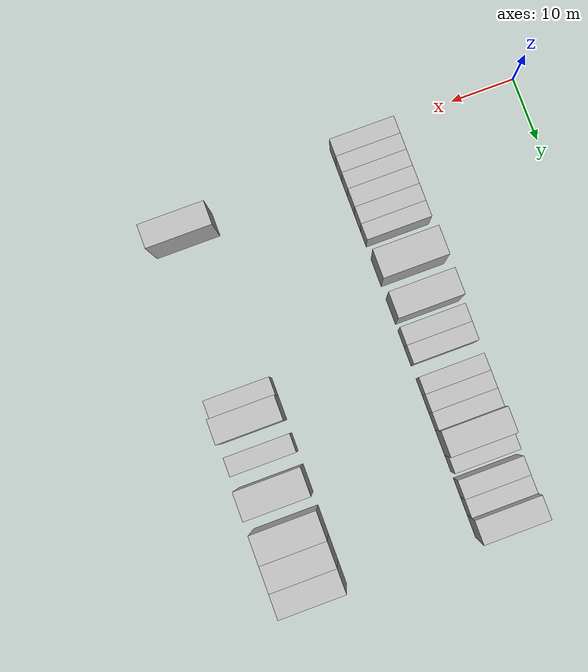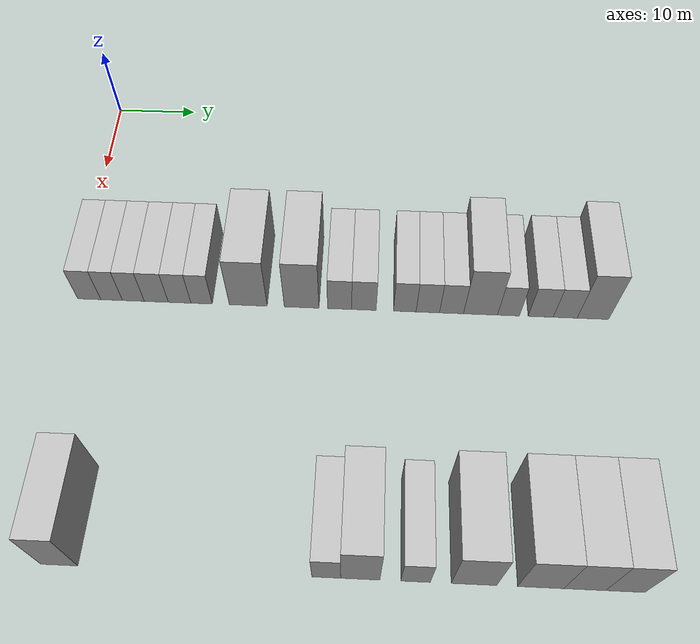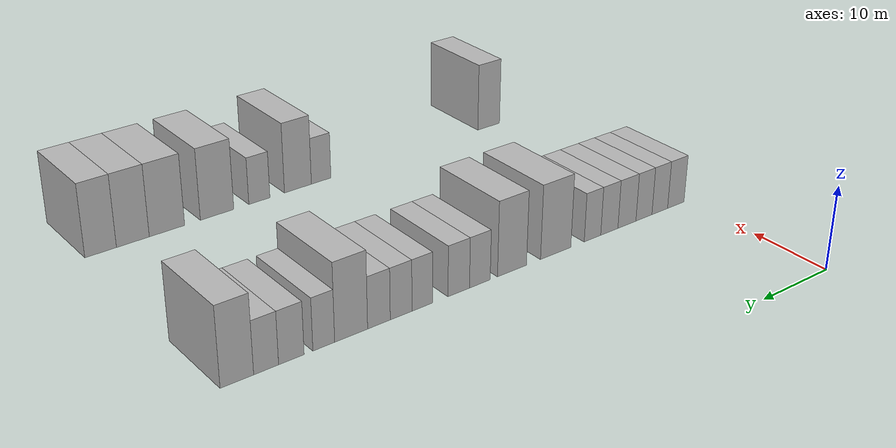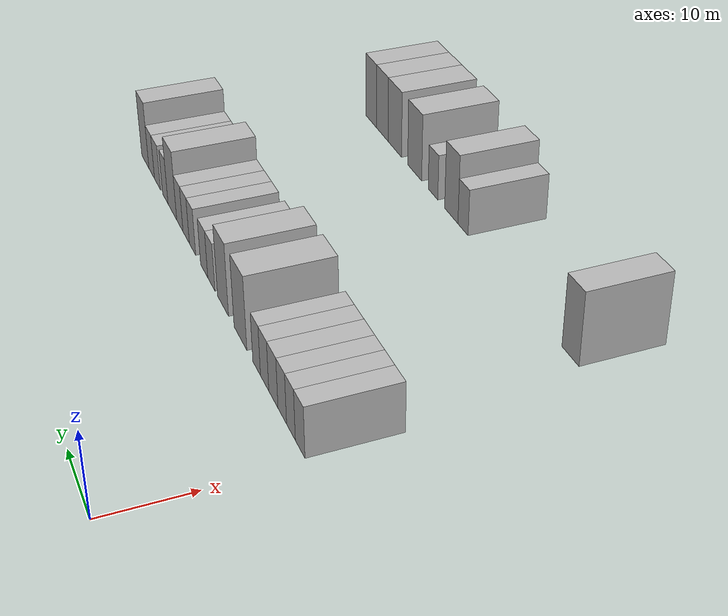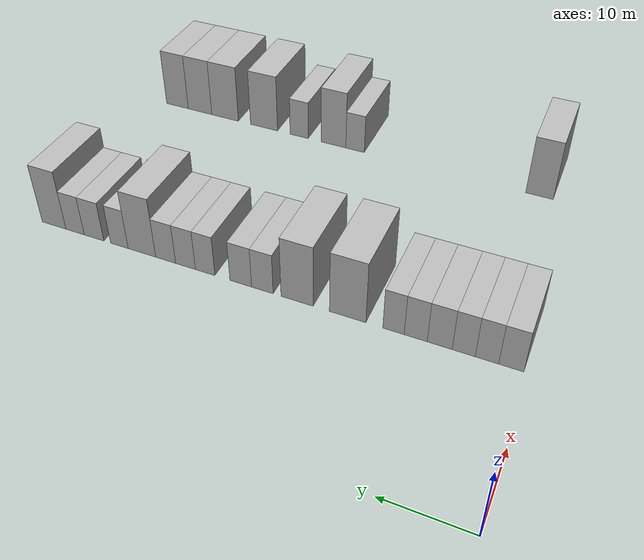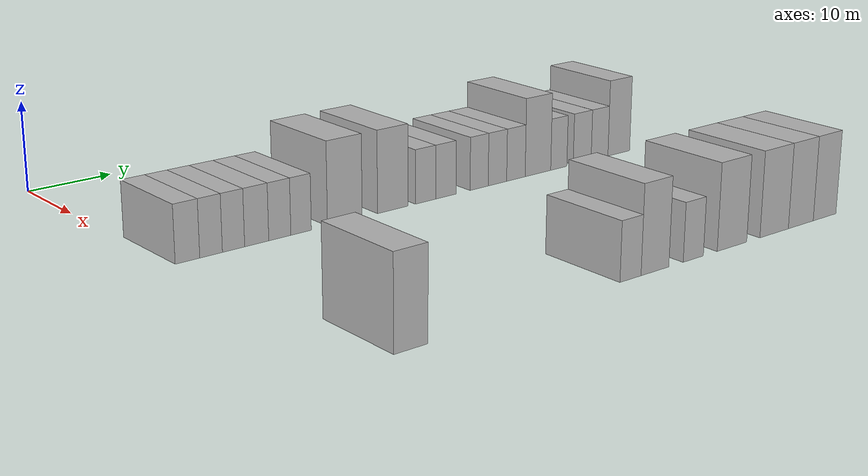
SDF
<sdf version="1.6">
 <world name="default">
  <model name="building_48">
   <static>1</static>
   <pose>25.0000 2.0056 0 0.000000 0.000000 0.000000</pose>
   <link name="link">
    <pose>0 0 3.00 0 0 0</pose>
    <collision name="collision"><geometry><box><size>10.0000 2.7137 6.0000</size></box></geometry></collision>
    <visual name="visual">
     <cast_shadows>0</cast_shadows>
     <geometry><box><size>10.0000 2.7137 6.0000</size></box></geometry>
     <material>
      <script>
       <uri>model://HANNAS_wall/materials/scripts</uri>
       <uri>model://HANNAS_wall/materials/textures</uri>
       <name>vrc/HANNAS_wall</name>
      </script>
     </material>
    </visual>
   </link>
  </model>
  <model name="building_49">
   <static>1</static>
   <pose>25.0000 4.6381 0 0.000000 0.000000 0.000000</pose>
   <link name="link">
    <pose>0 0 3.00 0 0 0</pose>
    <collision name="collision"><geometry><box><size>10.0000 2.5514 6.0000</size></box></geometry></collision>
    <visual name="visual">
     <cast_shadows>0</cast_shadows>
     <geometry><box><size>10.0000 2.5514 6.0000</size></box></geometry>
     <material>
      <script>
       <uri>model://HANNAS_wall/materials/scripts</uri>
       <uri>model://HANNAS_wall/materials/textures</uri>
       <name>vrc/HANNAS_wall</name>
      </script>
     </material>
    </visual>
   </link>
  </model>
  <model name="building_50">
   <static>1</static>
   <pose>25.0000 7.1918 0 0.000000 0.000000 0.000000</pose>
   <link name="link">
    <pose>0 0 3.00 0 0 0</pose>
    <collision name="collision"><geometry><box><size>10.0000 2.5560 6.0000</size></box></geometry></collision>
    <visual name="visual">
     <cast_shadows>0</cast_shadows>
     <geometry><box><size>10.0000 2.5560 6.0000</size></box></geometry>
     <material>
      <script>
       <uri>model://HANNAS_wall/materials/scripts</uri>
       <uri>model://HANNAS_wall/materials/textures</uri>
       <name>vrc/HANNAS_wall</name>
      </script>
     </material>
    </visual>
   </link>
  </model>
  <model name="building_51">
   <static>1</static>
   <pose>25.0000 9.8835 0 0.000000 0.000000 0.000000</pose>
   <link name="link">
    <pose>0 0 3.00 0 0 0</pose>
    <collision name="collision"><geometry><box><size>10.0000 2.8274 6.0000</size></box></geometry></collision>
    <visual name="visual">
     <cast_shadows>0</cast_shadows>
     <geometry><box><size>10.0000 2.8274 6.0000</size></box></geometry>
     <material>
      <script>
       <uri>model://HANNAS_wall/materials/scripts</uri>
       <uri>model://HANNAS_wall/materials/textures</uri>
       <name>vrc/HANNAS_wall</name>
      </script>
     </material>
    </visual>
   </link>
  </model>
  <model name="building_52">
   <static>1</static>
   <pose>25.0000 12.6209 0 0.000000 0.000000 0.000000</pose>
   <link name="link">
    <pose>0 0 3.00 0 0 0</pose>
    <collision name="collision"><geometry><box><size>10.0000 2.6474 6.0000</size></box></geometry></collision>
    <visual name="visual">
     <cast_shadows>0</cast_shadows>
     <geometry><box><size>10.0000 2.6474 6.0000</size></box></geometry>
     <material>
      <script>
       <uri>model://HANNAS_wall/materials/scripts</uri>
       <uri>model://HANNAS_wall/materials/textures</uri>
       <name>vrc/HANNAS_wall</name>
      </script>
     </material>
    </visual>
   </link>
  </model>
  <model name="building_53">
   <static>1</static>
   <pose>25.0000 15.1925 0 0.000000 0.000000 0.000000</pose>
   <link name="link">
    <pose>0 0 3.00 0 0 0</pose>
    <collision name="collision"><geometry><box><size>10.0000 2.4960 6.0000</size></box></geometry></collision>
    <visual name="visual">
     <cast_shadows>0</cast_shadows>
     <geometry><box><size>10.0000 2.4960 6.0000</size></box></geometry>
     <material>
      <script>
       <uri>model://HANNAS_wall/materials/scripts</uri>
       <uri>model://HANNAS_wall/materials/textures</uri>
       <name>vrc/HANNAS_wall</name>
      </script>
     </material>
    </visual>
   </link>
  </model>
  <model name="building_54">
   <static>1</static>
   <pose>25.0000 20.6453 0 0.000000 0.000000 0.000000</pose>
   <link name="link">
    <pose>0 0 4.50 0 0 0</pose>
    <collision name="collision"><geometry><box><size>10.0000 4.4096 9.0000</size></box></geometry></collision>
    <visual name="visual">
     <cast_shadows>0</cast_shadows>
     <geometry><box><size>10.0000 4.4096 9.0000</size></box></geometry>
     <material>
      <script>
       <uri>model://HANNAS_wall/materials/scripts</uri>
       <uri>model://HANNAS_wall/materials/textures</uri>
       <name>vrc/HANNAS_wall</name>
      </script>
     </material>
    </visual>
   </link>
  </model>
  <model name="building_55">
   <static>1</static>
   <pose>25.0000 26.8684 0 0.000000 0.000000 0.000000</pose>
   <link name="link">
    <pose>0 0 4.50 0 0 0</pose>
    <collision name="collision"><geometry><box><size>10.0000 4.0366 9.0000</size></box></geometry></collision>
    <visual name="visual">
     <cast_shadows>0</cast_shadows>
     <geometry><box><size>10.0000 4.0366 9.0000</size></box></geometry>
     <material>
      <script>
       <uri>model://HANNAS_wall/materials/scripts</uri>
       <uri>model://HANNAS_wall/materials/textures</uri>
       <name>vrc/HANNAS_wall</name>
      </script>
     </material>
    </visual>
   </link>
  </model>
  <model name="building_56">
   <static>1</static>
   <pose>25.0000 31.2788 0 0.000000 0.000000 0.000000</pose>
   <link name="link">
    <pose>0 0 3.00 0 0 0</pose>
    <collision name="collision"><geometry><box><size>10.0000 2.7842 6.0000</size></box></geometry></collision>
    <visual name="visual">
     <cast_shadows>0</cast_shadows>
     <geometry><box><size>10.0000 2.7842 6.0000</size></box></geometry>
     <material>
      <script>
       <uri>model://HANNAS_wall/materials/scripts</uri>
       <uri>model://HANNAS_wall/materials/textures</uri>
       <name>vrc/HANNAS_wall</name>
      </script>
     </material>
    </visual>
   </link>
  </model>
  <model name="building_57">
   <static>1</static>
   <pose>25.0000 34.0920 0 0.000000 0.000000 0.000000</pose>
   <link name="link">
    <pose>0 0 3.00 0 0 0</pose>
    <collision name="collision"><geometry><box><size>10.0000 2.8422 6.0000</size></box></geometry></collision>
    <visual name="visual">
     <cast_shadows>0</cast_shadows>
     <geometry><box><size>10.0000 2.8422 6.0000</size></box></geometry>
     <material>
      <script>
       <uri>model://HANNAS_wall/materials/scripts</uri>
       <uri>model://HANNAS_wall/materials/textures</uri>
       <name>vrc/HANNAS_wall</name>
      </script>
     </material>
    </visual>
   </link>
  </model>
  <model name="building_58">
   <static>1</static>
   <pose>25.0000 38.8232 0 0.000000 0.000000 0.000000</pose>
   <link name="link">
    <pose>0 0 3.00 0 0 0</pose>
    <collision name="collision"><geometry><box><size>10.0000 2.6201 6.0000</size></box></geometry></collision>
    <visual name="visual">
     <cast_shadows>0</cast_shadows>
     <geometry><box><size>10.0000 2.6201 6.0000</size></box></geometry>
     <material>
      <script>
       <uri>model://HANNAS_wall/materials/scripts</uri>
       <uri>model://HANNAS_wall/materials/textures</uri>
       <name>vrc/HANNAS_wall</name>
      </script>
     </material>
    </visual>
   </link>
  </model>
  <model name="building_59">
   <static>1</static>
   <pose>25.0000 41.4877 0 0.000000 0.000000 0.000000</pose>
   <link name="link">
    <pose>0 0 3.00 0 0 0</pose>
    <collision name="collision"><geometry><box><size>10.0000 2.7090 6.0000</size></box></geometry></collision>
    <visual name="visual">
     <cast_shadows>0</cast_shadows>
     <geometry><box><size>10.0000 2.7090 6.0000</size></box></geometry>
     <material>
      <script>
       <uri>model://HANNAS_wall/materials/scripts</uri>
       <uri>model://HANNAS_wall/materials/textures</uri>
       <name>vrc/HANNAS_wall</name>
      </script>
     </material>
    </visual>
   </link>
  </model>
  <model name="building_60">
   <static>1</static>
   <pose>25.0000 44.2271 0 0.000000 0.000000 0.000000</pose>
   <link name="link">
    <pose>0 0 3.00 0 0 0</pose>
    <collision name="collision"><geometry><box><size>10.0000 2.7699 6.0000</size></box></geometry></collision>
    <visual name="visual">
     <cast_shadows>0</cast_shadows>
     <geometry><box><size>10.0000 2.7699 6.0000</size></box></geometry>
     <material>
      <script>
       <uri>model://HANNAS_wall/materials/scripts</uri>
       <uri>model://HANNAS_wall/materials/textures</uri>
       <name>vrc/HANNAS_wall</name>
      </script>
     </material>
    </visual>
   </link>
  </model>
  <model name="building_61">
   <static>1</static>
   <pose>25.0000 47.5703 0 0.000000 0.000000 0.000000</pose>
   <link name="link">
    <pose>0 0 4.50 0 0 0</pose>
    <collision name="collision"><geometry><box><size>10.0000 3.9163 9.0000</size></box></geometry></collision>
    <visual name="visual">
     <cast_shadows>0</cast_shadows>
     <geometry><box><size>10.0000 3.9163 9.0000</size></box></geometry>
     <material>
      <script>
       <uri>model://HANNAS_wall/materials/scripts</uri>
       <uri>model://HANNAS_wall/materials/textures</uri>
       <name>vrc/HANNAS_wall</name>
      </script>
     </material>
    </visual>
   </link>
  </model>
  <model name="building_62">
   <static>1</static>
   <pose>25.0000 50.7920 0 0.000000 0.000000 0.000000</pose>
   <link name="link">
    <pose>0 0 3.00 0 0 0</pose>
    <collision name="collision"><geometry><box><size>10.0000 2.5271 6.0000</size></box></geometry></collision>
    <visual name="visual">
     <cast_shadows>0</cast_shadows>
     <geometry><box><size>10.0000 2.5271 6.0000</size></box></geometry>
     <material>
      <script>
       <uri>model://HANNAS_wall/materials/scripts</uri>
       <uri>model://HANNAS_wall/materials/textures</uri>
       <name>vrc/HANNAS_wall</name>
      </script>
     </material>
    </visual>
   </link>
  </model>
  <model name="building_63">
   <static>1</static>
   <pose>25.0000 54.4935 0 0.000000 0.000000 0.000000</pose>
   <link name="link">
    <pose>0 0 3.00 0 0 0</pose>
    <collision name="collision"><geometry><box><size>10.0000 2.8759 6.0000</size></box></geometry></collision>
    <visual name="visual">
     <cast_shadows>0</cast_shadows>
     <geometry><box><size>10.0000 2.8759 6.0000</size></box></geometry>
     <material>
      <script>
       <uri>model://HANNAS_wall/materials/scripts</uri>
       <uri>model://HANNAS_wall/materials/textures</uri>
       <name>vrc/HANNAS_wall</name>
      </script>
     </material>
    </visual>
   </link>
  </model>
  <model name="building_64">
   <static>1</static>
   <pose>25.0000 57.3033 0 0.000000 0.000000 0.000000</pose>
   <link name="link">
    <pose>0 0 3.00 0 0 0</pose>
    <collision name="collision"><geometry><box><size>10.0000 2.7436 6.0000</size></box></geometry></collision>
    <visual name="visual">
     <cast_shadows>0</cast_shadows>
     <geometry><box><size>10.0000 2.7436 6.0000</size></box></geometry>
     <material>
      <script>
       <uri>model://HANNAS_wall/materials/scripts</uri>
       <uri>model://HANNAS_wall/materials/textures</uri>
       <name>vrc/HANNAS_wall</name>
      </script>
     </material>
    </visual>
   </link>
  </model>
  <model name="building_65">
   <static>1</static>
   <pose>25.0000 60.4781 0 0.000000 0.000000 0.000000</pose>
   <link name="link">
    <pose>0 0 4.50 0 0 0</pose>
    <collision name="collision"><geometry><box><size>10.0000 3.6060 9.0000</size></box></geometry></collision>
    <visual name="visual">
     <cast_shadows>0</cast_shadows>
     <geometry><box><size>10.0000 3.6060 9.0000</size></box></geometry>
     <material>
      <script>
       <uri>model://HANNAS_wall/materials/scripts</uri>
       <uri>model://HANNAS_wall/materials/textures</uri>
       <name>vrc/HANNAS_wall</name>
      </script>
     </material>
    </visual>
   </link>
  </model>
  <model name="building_165">
   <static>1</static>
   <pose>55.0000 5.4091 0 0.000000 0.000000 0.000000</pose>
   <link name="link">
    <pose>0 0 4.50 0 0 0</pose>
    <collision name="collision"><geometry><box><size>10.0000 3.6341 9.0000</size></box></geometry></collision>
    <visual name="visual">
     <cast_shadows>0</cast_shadows>
     <geometry><box><size>10.0000 3.6341 9.0000</size></box></geometry>
     <material>
      <script>
       <uri>model://HANNAS_wall/materials/scripts</uri>
       <uri>model://HANNAS_wall/materials/textures</uri>
       <name>vrc/HANNAS_wall</name>
      </script>
     </material>
    </visual>
   </link>
  </model>
  <model name="building_166">
   <static>1</static>
   <pose>55.0000 31.4121 0 0.000000 0.000000 0.000000</pose>
   <link name="link">
    <pose>0 0 3.00 0 0 0</pose>
    <collision name="collision"><geometry><box><size>10.0000 2.7906 6.0000</size></box></geometry></collision>
    <visual name="visual">
     <cast_shadows>0</cast_shadows>
     <geometry><box><size>10.0000 2.7906 6.0000</size></box></geometry>
     <material>
      <script>
       <uri>model://HANNAS_wall/materials/scripts</uri>
       <uri>model://HANNAS_wall/materials/textures</uri>
       <name>vrc/HANNAS_wall</name>
      </script>
     </material>
    </visual>
   </link>
  </model>
  <model name="building_167">
   <static>1</static>
   <pose>55.0000 34.6942 0 0.000000 0.000000 0.000000</pose>
   <link name="link">
    <pose>0 0 4.50 0 0 0</pose>
    <collision name="collision"><geometry><box><size>10.0000 3.7735 9.0000</size></box></geometry></collision>
    <visual name="visual">
     <cast_shadows>0</cast_shadows>
     <geometry><box><size>10.0000 3.7735 9.0000</size></box></geometry>
     <material>
      <script>
       <uri>model://HANNAS_wall/materials/scripts</uri>
       <uri>model://HANNAS_wall/materials/textures</uri>
       <name>vrc/HANNAS_wall</name>
      </script>
     </material>
    </visual>
   </link>
  </model>
  <model name="building_168">
   <static>1</static>
   <pose>55.0000 40.0072 0 0.000000 0.000000 0.000000</pose>
   <link name="link">
    <pose>0 0 3.00 0 0 0</pose>
    <collision name="collision"><geometry><box><size>10.0000 2.8525 6.0000</size></box></geometry></collision>
    <visual name="visual">
     <cast_shadows>0</cast_shadows>
     <geometry><box><size>10.0000 2.8525 6.0000</size></box></geometry>
     <material>
      <script>
       <uri>model://HANNAS_wall/materials/scripts</uri>
       <uri>model://HANNAS_wall/materials/textures</uri>
       <name>vrc/HANNAS_wall</name>
      </script>
     </material>
    </visual>
   </link>
  </model>
  <model name="building_169">
   <static>1</static>
   <pose>55.0000 45.6147 0 0.000000 0.000000 0.000000</pose>
   <link name="link">
    <pose>0 0 4.50 0 0 0</pose>
    <collision name="collision"><geometry><box><size>10.0000 4.3624 9.0000</size></box></geometry></collision>
    <visual name="visual">
     <cast_shadows>0</cast_shadows>
     <geometry><box><size>10.0000 4.3624 9.0000</size></box></geometry>
     <material>
      <script>
       <uri>model://HANNAS_wall/materials/scripts</uri>
       <uri>model://HANNAS_wall/materials/textures</uri>
       <name>vrc/HANNAS_wall</name>
      </script>
     </material>
    </visual>
   </link>
  </model>
  <model name="building_170">
   <static>1</static>
   <pose>55.0000 52.0046 0 0.000000 0.000000 0.000000</pose>
   <link name="link">
    <pose>0 0 4.50 0 0 0</pose>
    <collision name="collision"><geometry><box><size>10.0000 4.4175 9.0000</size></box></geometry></collision>
    <visual name="visual">
     <cast_shadows>0</cast_shadows>
     <geometry><box><size>10.0000 4.4175 9.0000</size></box></geometry>
     <material>
      <script>
       <uri>model://HANNAS_wall/materials/scripts</uri>
       <uri>model://HANNAS_wall/materials/textures</uri>
       <name>vrc/HANNAS_wall</name>
      </script>
     </material>
    </visual>
   </link>
  </model>
  <model name="building_171">
   <static>1</static>
   <pose>55.0000 56.2030 0 0.000000 0.000000 0.000000</pose>
   <link name="link">
    <pose>0 0 4.50 0 0 0</pose>
    <collision name="collision"><geometry><box><size>10.0000 3.9795 9.0000</size></box></geometry></collision>
    <visual name="visual">
     <cast_shadows>0</cast_shadows>
     <geometry><box><size>10.0000 3.9795 9.0000</size></box></geometry>
     <material>
      <script>
       <uri>model://HANNAS_wall/materials/scripts</uri>
       <uri>model://HANNAS_wall/materials/textures</uri>
       <name>vrc/HANNAS_wall</name>
      </script>
     </material>
    </visual>
   </link>
  </model>
  <model name="building_172">
   <static>1</static>
   <pose>55.0000 60.0589 0 0.000000 0.000000 0.000000</pose>
   <link name="link">
    <pose>0 0 4.50 0 0 0</pose>
    <collision name="collision"><geometry><box><size>10.0000 3.7323 9.0000</size></box></geometry></collision>
    <visual name="visual">
     <cast_shadows>0</cast_shadows>
     <geometry><box><size>10.0000 3.7323 9.0000</size></box></geometry>
     <material>
      <script>
       <uri>model://HANNAS_wall/materials/scripts</uri>
       <uri>model://HANNAS_wall/materials/textures</uri>
       <name>vrc/HANNAS_wall</name>
      </script>
     </material>
    </visual>
   </link>
  </model>
 </world>
</sdf>
